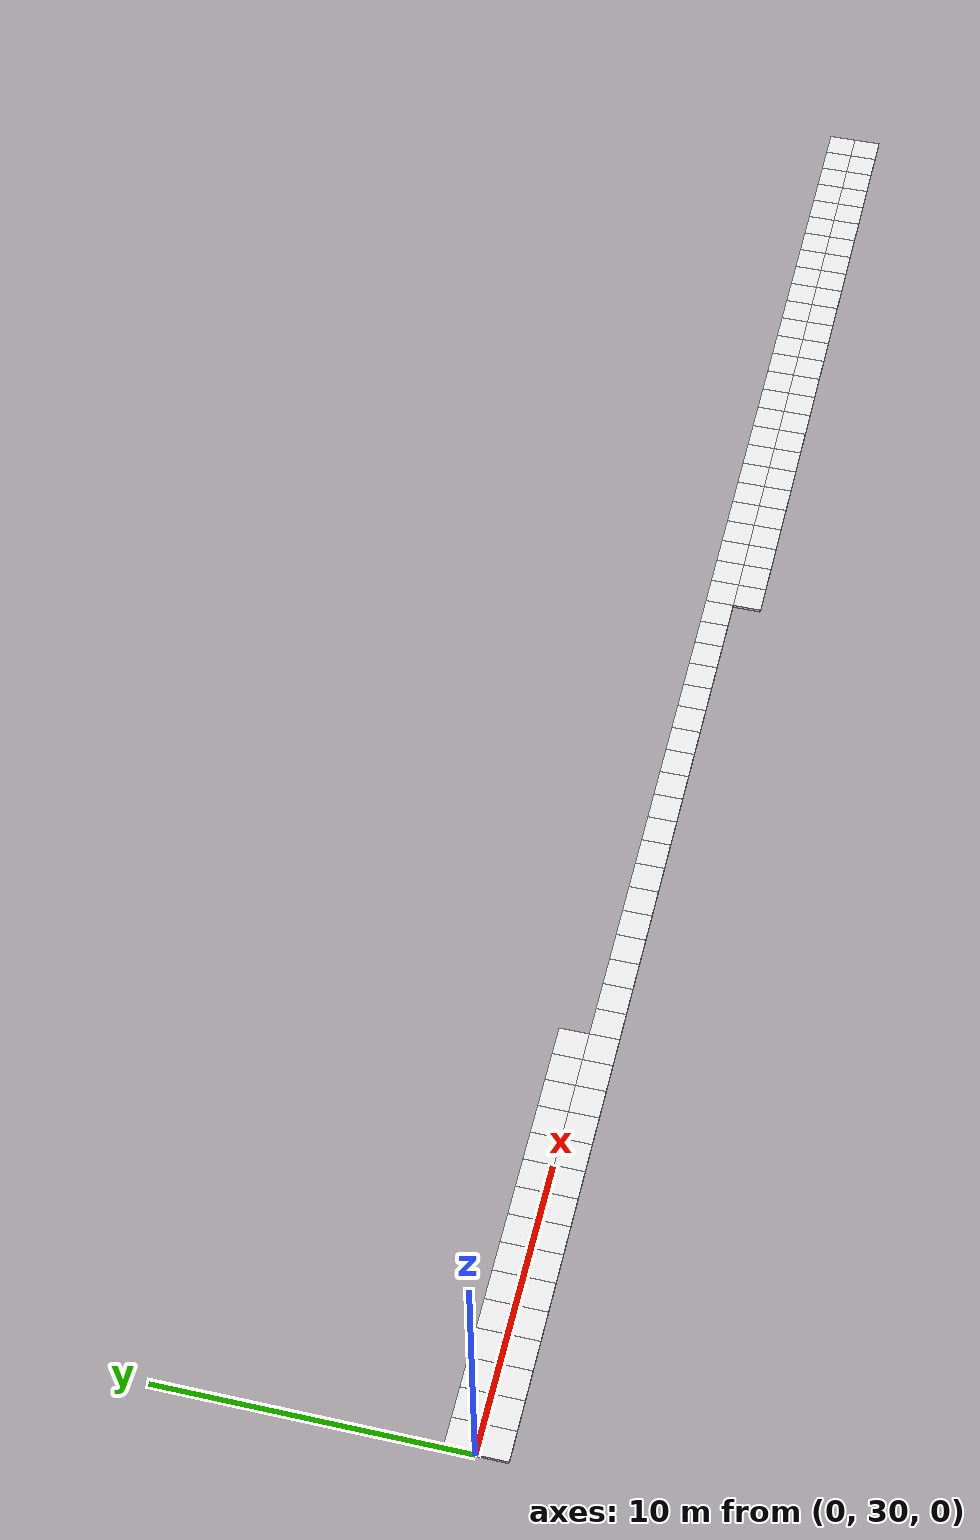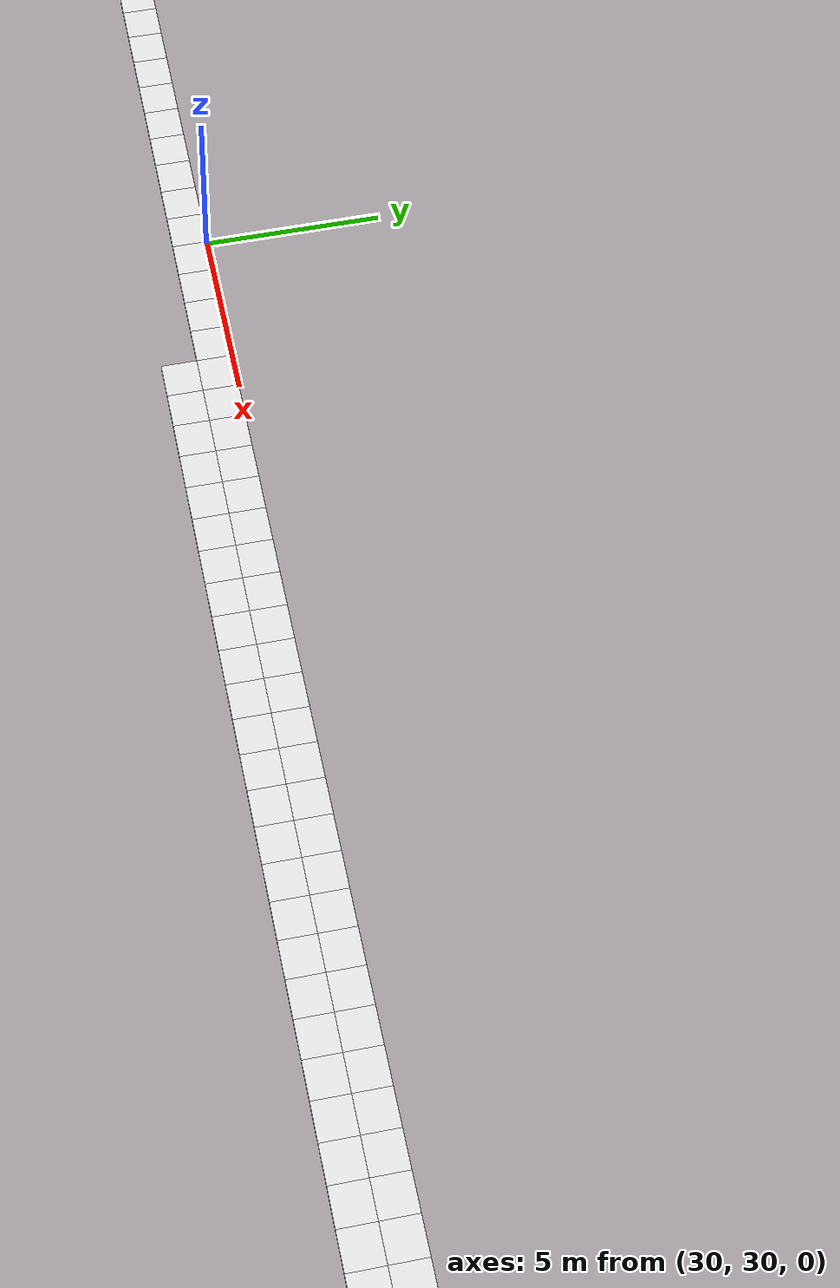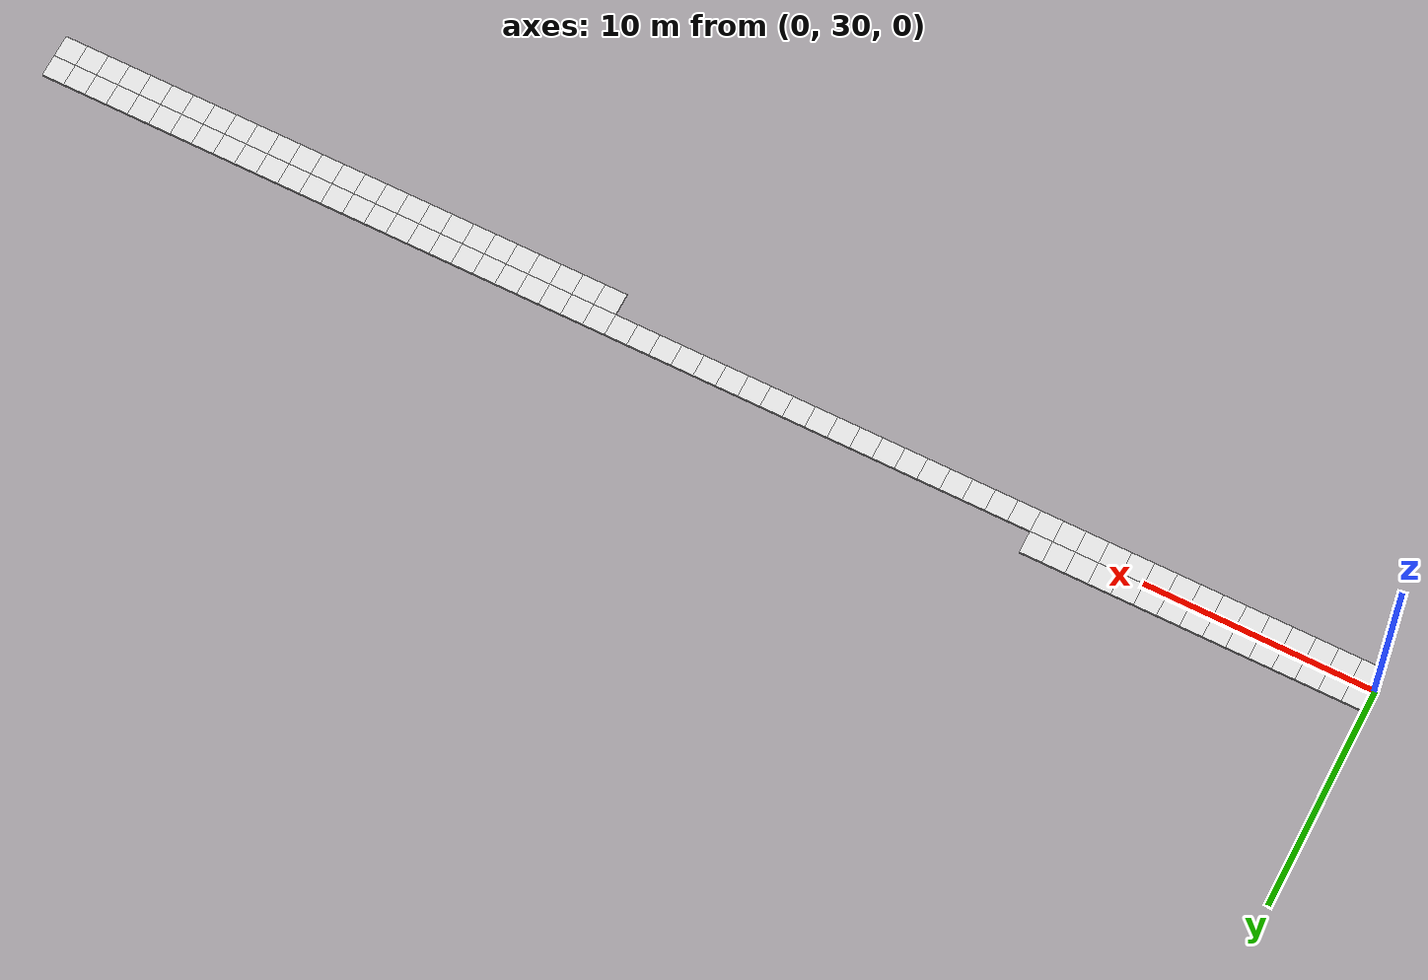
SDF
<sdf version="1.6">
 <world name="grid_world">
  <model name="cell_34_28">
   <static>true</static>
   <link name="link">
    <collision name="collision"><geometry><box><size>1 1 0.1</size></box></geometry></collision>
    <visual name="visual">
     <geometry><box><size>1 1 0.1</size></box></geometry>
     <material>
      <script><uri>file://media/materials/scripts/gazebo.material</uri><name>Gazebo/White</name></script>
     </material>
    </visual>
    <pose>34.5 28.5 0.05 0 0 0</pose>
   </link>
  </model>
  <model name="cell_35_28">
   <static>true</static>
   <link name="link">
    <collision name="collision"><geometry><box><size>1 1 0.1</size></box></geometry></collision>
    <visual name="visual">
     <geometry><box><size>1 1 0.1</size></box></geometry>
     <material>
      <script><uri>file://media/materials/scripts/gazebo.material</uri><name>Gazebo/White</name></script>
     </material>
    </visual>
    <pose>35.5 28.5 0.05 0 0 0</pose>
   </link>
  </model>
  <model name="cell_36_28">
   <static>true</static>
   <link name="link">
    <collision name="collision"><geometry><box><size>1 1 0.1</size></box></geometry></collision>
    <visual name="visual">
     <geometry><box><size>1 1 0.1</size></box></geometry>
     <material>
      <script><uri>file://media/materials/scripts/gazebo.material</uri><name>Gazebo/White</name></script>
     </material>
    </visual>
    <pose>36.5 28.5 0.05 0 0 0</pose>
   </link>
  </model>
  <model name="cell_37_28">
   <static>true</static>
   <link name="link">
    <collision name="collision"><geometry><box><size>1 1 0.1</size></box></geometry></collision>
    <visual name="visual">
     <geometry><box><size>1 1 0.1</size></box></geometry>
     <material>
      <script><uri>file://media/materials/scripts/gazebo.material</uri><name>Gazebo/White</name></script>
     </material>
    </visual>
    <pose>37.5 28.5 0.05 0 0 0</pose>
   </link>
  </model>
  <model name="cell_38_28">
   <static>true</static>
   <link name="link">
    <collision name="collision"><geometry><box><size>1 1 0.1</size></box></geometry></collision>
    <visual name="visual">
     <geometry><box><size>1 1 0.1</size></box></geometry>
     <material>
      <script><uri>file://media/materials/scripts/gazebo.material</uri><name>Gazebo/White</name></script>
     </material>
    </visual>
    <pose>38.5 28.5 0.05 0 0 0</pose>
   </link>
  </model>
  <model name="cell_39_28">
   <static>true</static>
   <link name="link">
    <collision name="collision"><geometry><box><size>1 1 0.1</size></box></geometry></collision>
    <visual name="visual">
     <geometry><box><size>1 1 0.1</size></box></geometry>
     <material>
      <script><uri>file://media/materials/scripts/gazebo.material</uri><name>Gazebo/White</name></script>
     </material>
    </visual>
    <pose>39.5 28.5 0.05 0 0 0</pose>
   </link>
  </model>
  <model name="cell_40_28">
   <static>true</static>
   <link name="link">
    <collision name="collision"><geometry><box><size>1 1 0.1</size></box></geometry></collision>
    <visual name="visual">
     <geometry><box><size>1 1 0.1</size></box></geometry>
     <material>
      <script><uri>file://media/materials/scripts/gazebo.material</uri><name>Gazebo/White</name></script>
     </material>
    </visual>
    <pose>40.5 28.5 0.05 0 0 0</pose>
   </link>
  </model>
  <model name="cell_41_28">
   <static>true</static>
   <link name="link">
    <collision name="collision"><geometry><box><size>1 1 0.1</size></box></geometry></collision>
    <visual name="visual">
     <geometry><box><size>1 1 0.1</size></box></geometry>
     <material>
      <script><uri>file://media/materials/scripts/gazebo.material</uri><name>Gazebo/White</name></script>
     </material>
    </visual>
    <pose>41.5 28.5 0.05 0 0 0</pose>
   </link>
  </model>
  <model name="cell_42_28">
   <static>true</static>
   <link name="link">
    <collision name="collision"><geometry><box><size>1 1 0.1</size></box></geometry></collision>
    <visual name="visual">
     <geometry><box><size>1 1 0.1</size></box></geometry>
     <material>
      <script><uri>file://media/materials/scripts/gazebo.material</uri><name>Gazebo/White</name></script>
     </material>
    </visual>
    <pose>42.5 28.5 0.05 0 0 0</pose>
   </link>
  </model>
  <model name="cell_43_28">
   <static>true</static>
   <link name="link">
    <collision name="collision"><geometry><box><size>1 1 0.1</size></box></geometry></collision>
    <visual name="visual">
     <geometry><box><size>1 1 0.1</size></box></geometry>
     <material>
      <script><uri>file://media/materials/scripts/gazebo.material</uri><name>Gazebo/White</name></script>
     </material>
    </visual>
    <pose>43.5 28.5 0.05 0 0 0</pose>
   </link>
  </model>
  <model name="cell_44_28">
   <static>true</static>
   <link name="link">
    <collision name="collision"><geometry><box><size>1 1 0.1</size></box></geometry></collision>
    <visual name="visual">
     <geometry><box><size>1 1 0.1</size></box></geometry>
     <material>
      <script><uri>file://media/materials/scripts/gazebo.material</uri><name>Gazebo/White</name></script>
     </material>
    </visual>
    <pose>44.5 28.5 0.05 0 0 0</pose>
   </link>
  </model>
  <model name="cell_45_28">
   <static>true</static>
   <link name="link">
    <collision name="collision"><geometry><box><size>1 1 0.1</size></box></geometry></collision>
    <visual name="visual">
     <geometry><box><size>1 1 0.1</size></box></geometry>
     <material>
      <script><uri>file://media/materials/scripts/gazebo.material</uri><name>Gazebo/White</name></script>
     </material>
    </visual>
    <pose>45.5 28.5 0.05 0 0 0</pose>
   </link>
  </model>
  <model name="cell_46_28">
   <static>true</static>
   <link name="link">
    <collision name="collision"><geometry><box><size>1 1 0.1</size></box></geometry></collision>
    <visual name="visual">
     <geometry><box><size>1 1 0.1</size></box></geometry>
     <material>
      <script><uri>file://media/materials/scripts/gazebo.material</uri><name>Gazebo/White</name></script>
     </material>
    </visual>
    <pose>46.5 28.5 0.05 0 0 0</pose>
   </link>
  </model>
  <model name="cell_47_28">
   <static>true</static>
   <link name="link">
    <collision name="collision"><geometry><box><size>1 1 0.1</size></box></geometry></collision>
    <visual name="visual">
     <geometry><box><size>1 1 0.1</size></box></geometry>
     <material>
      <script><uri>file://media/materials/scripts/gazebo.material</uri><name>Gazebo/White</name></script>
     </material>
    </visual>
    <pose>47.5 28.5 0.05 0 0 0</pose>
   </link>
  </model>
  <model name="cell_48_28">
   <static>true</static>
   <link name="link">
    <collision name="collision"><geometry><box><size>1 1 0.1</size></box></geometry></collision>
    <visual name="visual">
     <geometry><box><size>1 1 0.1</size></box></geometry>
     <material>
      <script><uri>file://media/materials/scripts/gazebo.material</uri><name>Gazebo/White</name></script>
     </material>
    </visual>
    <pose>48.5 28.5 0.05 0 0 0</pose>
   </link>
  </model>
  <model name="cell_49_28">
   <static>true</static>
   <link name="link">
    <collision name="collision"><geometry><box><size>1 1 0.1</size></box></geometry></collision>
    <visual name="visual">
     <geometry><box><size>1 1 0.1</size></box></geometry>
     <material>
      <script><uri>file://media/materials/scripts/gazebo.material</uri><name>Gazebo/White</name></script>
     </material>
    </visual>
    <pose>49.5 28.5 0.05 0 0 0</pose>
   </link>
  </model>
  <model name="cell_50_28">
   <static>true</static>
   <link name="link">
    <collision name="collision"><geometry><box><size>1 1 0.1</size></box></geometry></collision>
    <visual name="visual">
     <geometry><box><size>1 1 0.1</size></box></geometry>
     <material>
      <script><uri>file://media/materials/scripts/gazebo.material</uri><name>Gazebo/White</name></script>
     </material>
    </visual>
    <pose>50.5 28.5 0.05 0 0 0</pose>
   </link>
  </model>
  <model name="cell_51_28">
   <static>true</static>
   <link name="link">
    <collision name="collision"><geometry><box><size>1 1 0.1</size></box></geometry></collision>
    <visual name="visual">
     <geometry><box><size>1 1 0.1</size></box></geometry>
     <material>
      <script><uri>file://media/materials/scripts/gazebo.material</uri><name>Gazebo/White</name></script>
     </material>
    </visual>
    <pose>51.5 28.5 0.05 0 0 0</pose>
   </link>
  </model>
  <model name="cell_52_28">
   <static>true</static>
   <link name="link">
    <collision name="collision"><geometry><box><size>1 1 0.1</size></box></geometry></collision>
    <visual name="visual">
     <geometry><box><size>1 1 0.1</size></box></geometry>
     <material>
      <script><uri>file://media/materials/scripts/gazebo.material</uri><name>Gazebo/White</name></script>
     </material>
    </visual>
    <pose>52.5 28.5 0.05 0 0 0</pose>
   </link>
  </model>
  <model name="cell_53_28">
   <static>true</static>
   <link name="link">
    <collision name="collision"><geometry><box><size>1 1 0.1</size></box></geometry></collision>
    <visual name="visual">
     <geometry><box><size>1 1 0.1</size></box></geometry>
     <material>
      <script><uri>file://media/materials/scripts/gazebo.material</uri><name>Gazebo/White</name></script>
     </material>
    </visual>
    <pose>53.5 28.5 0.05 0 0 0</pose>
   </link>
  </model>
  <model name="cell_54_28">
   <static>true</static>
   <link name="link">
    <collision name="collision"><geometry><box><size>1 1 0.1</size></box></geometry></collision>
    <visual name="visual">
     <geometry><box><size>1 1 0.1</size></box></geometry>
     <material>
      <script><uri>file://media/materials/scripts/gazebo.material</uri><name>Gazebo/White</name></script>
     </material>
    </visual>
    <pose>54.5 28.5 0.05 0 0 0</pose>
   </link>
  </model>
  <model name="cell_55_28">
   <static>true</static>
   <link name="link">
    <collision name="collision"><geometry><box><size>1 1 0.1</size></box></geometry></collision>
    <visual name="visual">
     <geometry><box><size>1 1 0.1</size></box></geometry>
     <material>
      <script><uri>file://media/materials/scripts/gazebo.material</uri><name>Gazebo/White</name></script>
     </material>
    </visual>
    <pose>55.5 28.5 0.05 0 0 0</pose>
   </link>
  </model>
  <model name="cell_56_28">
   <static>true</static>
   <link name="link">
    <collision name="collision"><geometry><box><size>1 1 0.1</size></box></geometry></collision>
    <visual name="visual">
     <geometry><box><size>1 1 0.1</size></box></geometry>
     <material>
      <script><uri>file://media/materials/scripts/gazebo.material</uri><name>Gazebo/White</name></script>
     </material>
    </visual>
    <pose>56.5 28.5 0.05 0 0 0</pose>
   </link>
  </model>
  <model name="cell_57_28">
   <static>true</static>
   <link name="link">
    <collision name="collision"><geometry><box><size>1 1 0.1</size></box></geometry></collision>
    <visual name="visual">
     <geometry><box><size>1 1 0.1</size></box></geometry>
     <material>
      <script><uri>file://media/materials/scripts/gazebo.material</uri><name>Gazebo/White</name></script>
     </material>
    </visual>
    <pose>57.5 28.5 0.05 0 0 0</pose>
   </link>
  </model>
  <model name="cell_58_28">
   <static>true</static>
   <link name="link">
    <collision name="collision"><geometry><box><size>1 1 0.1</size></box></geometry></collision>
    <visual name="visual">
     <geometry><box><size>1 1 0.1</size></box></geometry>
     <material>
      <script><uri>file://media/materials/scripts/gazebo.material</uri><name>Gazebo/White</name></script>
     </material>
    </visual>
    <pose>58.5 28.5 0.05 0 0 0</pose>
   </link>
  </model>
  <model name="cell_59_28">
   <static>true</static>
   <link name="link">
    <collision name="collision"><geometry><box><size>1 1 0.1</size></box></geometry></collision>
    <visual name="visual">
     <geometry><box><size>1 1 0.1</size></box></geometry>
     <material>
      <script><uri>file://media/materials/scripts/gazebo.material</uri><name>Gazebo/White</name></script>
     </material>
    </visual>
    <pose>59.5 28.5 0.05 0 0 0</pose>
   </link>
  </model>
  <model name="cell_0_29">
   <static>true</static>
   <link name="link">
    <collision name="collision"><geometry><box><size>1 1 0.1</size></box></geometry></collision>
    <visual name="visual">
     <geometry><box><size>1 1 0.1</size></box></geometry>
     <material>
      <script><uri>file://media/materials/scripts/gazebo.material</uri><name>Gazebo/White</name></script>
     </material>
    </visual>
    <pose>0.5 29.5 0.05 0 0 0</pose>
   </link>
  </model>
  <model name="cell_1_29">
   <static>true</static>
   <link name="link">
    <collision name="collision"><geometry><box><size>1 1 0.1</size></box></geometry></collision>
    <visual name="visual">
     <geometry><box><size>1 1 0.1</size></box></geometry>
     <material>
      <script><uri>file://media/materials/scripts/gazebo.material</uri><name>Gazebo/White</name></script>
     </material>
    </visual>
    <pose>1.5 29.5 0.05 0 0 0</pose>
   </link>
  </model>
  <model name="cell_2_29">
   <static>true</static>
   <link name="link">
    <collision name="collision"><geometry><box><size>1 1 0.1</size></box></geometry></collision>
    <visual name="visual">
     <geometry><box><size>1 1 0.1</size></box></geometry>
     <material>
      <script><uri>file://media/materials/scripts/gazebo.material</uri><name>Gazebo/White</name></script>
     </material>
    </visual>
    <pose>2.5 29.5 0.05 0 0 0</pose>
   </link>
  </model>
  <model name="cell_3_29">
   <static>true</static>
   <link name="link">
    <collision name="collision"><geometry><box><size>1 1 0.1</size></box></geometry></collision>
    <visual name="visual">
     <geometry><box><size>1 1 0.1</size></box></geometry>
     <material>
      <script><uri>file://media/materials/scripts/gazebo.material</uri><name>Gazebo/White</name></script>
     </material>
    </visual>
    <pose>3.5 29.5 0.05 0 0 0</pose>
   </link>
  </model>
  <model name="cell_4_29">
   <static>true</static>
   <link name="link">
    <collision name="collision"><geometry><box><size>1 1 0.1</size></box></geometry></collision>
    <visual name="visual">
     <geometry><box><size>1 1 0.1</size></box></geometry>
     <material>
      <script><uri>file://media/materials/scripts/gazebo.material</uri><name>Gazebo/White</name></script>
     </material>
    </visual>
    <pose>4.5 29.5 0.05 0 0 0</pose>
   </link>
  </model>
  <model name="cell_5_29">
   <static>true</static>
   <link name="link">
    <collision name="collision"><geometry><box><size>1 1 0.1</size></box></geometry></collision>
    <visual name="visual">
     <geometry><box><size>1 1 0.1</size></box></geometry>
     <material>
      <script><uri>file://media/materials/scripts/gazebo.material</uri><name>Gazebo/White</name></script>
     </material>
    </visual>
    <pose>5.5 29.5 0.05 0 0 0</pose>
   </link>
  </model>
  <model name="cell_6_29">
   <static>true</static>
   <link name="link">
    <collision name="collision"><geometry><box><size>1 1 0.1</size></box></geometry></collision>
    <visual name="visual">
     <geometry><box><size>1 1 0.1</size></box></geometry>
     <material>
      <script><uri>file://media/materials/scripts/gazebo.material</uri><name>Gazebo/White</name></script>
     </material>
    </visual>
    <pose>6.5 29.5 0.05 0 0 0</pose>
   </link>
  </model>
  <model name="cell_7_29">
   <static>true</static>
   <link name="link">
    <collision name="collision"><geometry><box><size>1 1 0.1</size></box></geometry></collision>
    <visual name="visual">
     <geometry><box><size>1 1 0.1</size></box></geometry>
     <material>
      <script><uri>file://media/materials/scripts/gazebo.material</uri><name>Gazebo/White</name></script>
     </material>
    </visual>
    <pose>7.5 29.5 0.05 0 0 0</pose>
   </link>
  </model>
  <model name="cell_8_29">
   <static>true</static>
   <link name="link">
    <collision name="collision"><geometry><box><size>1 1 0.1</size></box></geometry></collision>
    <visual name="visual">
     <geometry><box><size>1 1 0.1</size></box></geometry>
     <material>
      <script><uri>file://media/materials/scripts/gazebo.material</uri><name>Gazebo/White</name></script>
     </material>
    </visual>
    <pose>8.5 29.5 0.05 0 0 0</pose>
   </link>
  </model>
  <model name="cell_9_29">
   <static>true</static>
   <link name="link">
    <collision name="collision"><geometry><box><size>1 1 0.1</size></box></geometry></collision>
    <visual name="visual">
     <geometry><box><size>1 1 0.1</size></box></geometry>
     <material>
      <script><uri>file://media/materials/scripts/gazebo.material</uri><name>Gazebo/White</name></script>
     </material>
    </visual>
    <pose>9.5 29.5 0.05 0 0 0</pose>
   </link>
  </model>
  <model name="cell_10_29">
   <static>true</static>
   <link name="link">
    <collision name="collision"><geometry><box><size>1 1 0.1</size></box></geometry></collision>
    <visual name="visual">
     <geometry><box><size>1 1 0.1</size></box></geometry>
     <material>
      <script><uri>file://media/materials/scripts/gazebo.material</uri><name>Gazebo/White</name></script>
     </material>
    </visual>
    <pose>10.5 29.5 0.05 0 0 0</pose>
   </link>
  </model>
  <model name="cell_11_29">
   <static>true</static>
   <link name="link">
    <collision name="collision"><geometry><box><size>1 1 0.1</size></box></geometry></collision>
    <visual name="visual">
     <geometry><box><size>1 1 0.1</size></box></geometry>
     <material>
      <script><uri>file://media/materials/scripts/gazebo.material</uri><name>Gazebo/White</name></script>
     </material>
    </visual>
    <pose>11.5 29.5 0.05 0 0 0</pose>
   </link>
  </model>
  <model name="cell_12_29">
   <static>true</static>
   <link name="link">
    <collision name="collision"><geometry><box><size>1 1 0.1</size></box></geometry></collision>
    <visual name="visual">
     <geometry><box><size>1 1 0.1</size></box></geometry>
     <material>
      <script><uri>file://media/materials/scripts/gazebo.material</uri><name>Gazebo/White</name></script>
     </material>
    </visual>
    <pose>12.5 29.5 0.05 0 0 0</pose>
   </link>
  </model>
  <model name="cell_13_29">
   <static>true</static>
   <link name="link">
    <collision name="collision"><geometry><box><size>1 1 0.1</size></box></geometry></collision>
    <visual name="visual">
     <geometry><box><size>1 1 0.1</size></box></geometry>
     <material>
      <script><uri>file://media/materials/scripts/gazebo.material</uri><name>Gazebo/White</name></script>
     </material>
    </visual>
    <pose>13.5 29.5 0.05 0 0 0</pose>
   </link>
  </model>
  <model name="cell_14_29">
   <static>true</static>
   <link name="link">
    <collision name="collision"><geometry><box><size>1 1 0.1</size></box></geometry></collision>
    <visual name="visual">
     <geometry><box><size>1 1 0.1</size></box></geometry>
     <material>
      <script><uri>file://media/materials/scripts/gazebo.material</uri><name>Gazebo/White</name></script>
     </material>
    </visual>
    <pose>14.5 29.5 0.05 0 0 0</pose>
   </link>
  </model>
  <model name="cell_15_29">
   <static>true</static>
   <link name="link">
    <collision name="collision"><geometry><box><size>1 1 0.1</size></box></geometry></collision>
    <visual name="visual">
     <geometry><box><size>1 1 0.1</size></box></geometry>
     <material>
      <script><uri>file://media/materials/scripts/gazebo.material</uri><name>Gazebo/White</name></script>
     </material>
    </visual>
    <pose>15.5 29.5 0.05 0 0 0</pose>
   </link>
  </model>
  <model name="cell_16_29">
   <static>true</static>
   <link name="link">
    <collision name="collision"><geometry><box><size>1 1 0.1</size></box></geometry></collision>
    <visual name="visual">
     <geometry><box><size>1 1 0.1</size></box></geometry>
     <material>
      <script><uri>file://media/materials/scripts/gazebo.material</uri><name>Gazebo/White</name></script>
     </material>
    </visual>
    <pose>16.5 29.5 0.05 0 0 0</pose>
   </link>
  </model>
  <model name="cell_17_29">
   <static>true</static>
   <link name="link">
    <collision name="collision"><geometry><box><size>1 1 0.1</size></box></geometry></collision>
    <visual name="visual">
     <geometry><box><size>1 1 0.1</size></box></geometry>
     <material>
      <script><uri>file://media/materials/scripts/gazebo.material</uri><name>Gazebo/White</name></script>
     </material>
    </visual>
    <pose>17.5 29.5 0.05 0 0 0</pose>
   </link>
  </model>
  <model name="cell_18_29">
   <static>true</static>
   <link name="link">
    <collision name="collision"><geometry><box><size>1 1 0.1</size></box></geometry></collision>
    <visual name="visual">
     <geometry><box><size>1 1 0.1</size></box></geometry>
     <material>
      <script><uri>file://media/materials/scripts/gazebo.material</uri><name>Gazebo/White</name></script>
     </material>
    </visual>
    <pose>18.5 29.5 0.05 0 0 0</pose>
   </link>
  </model>
  <model name="cell_19_29">
   <static>true</static>
   <link name="link">
    <collision name="collision"><geometry><box><size>1 1 0.1</size></box></geometry></collision>
    <visual name="visual">
     <geometry><box><size>1 1 0.1</size></box></geometry>
     <material>
      <script><uri>file://media/materials/scripts/gazebo.material</uri><name>Gazebo/White</name></script>
     </material>
    </visual>
    <pose>19.5 29.5 0.05 0 0 0</pose>
   </link>
  </model>
  <model name="cell_20_29">
   <static>true</static>
   <link name="link">
    <collision name="collision"><geometry><box><size>1 1 0.1</size></box></geometry></collision>
    <visual name="visual">
     <geometry><box><size>1 1 0.1</size></box></geometry>
     <material>
      <script><uri>file://media/materials/scripts/gazebo.material</uri><name>Gazebo/White</name></script>
     </material>
    </visual>
    <pose>20.5 29.5 0.05 0 0 0</pose>
   </link>
  </model>
  <model name="cell_21_29">
   <static>true</static>
   <link name="link">
    <collision name="collision"><geometry><box><size>1 1 0.1</size></box></geometry></collision>
    <visual name="visual">
     <geometry><box><size>1 1 0.1</size></box></geometry>
     <material>
      <script><uri>file://media/materials/scripts/gazebo.material</uri><name>Gazebo/White</name></script>
     </material>
    </visual>
    <pose>21.5 29.5 0.05 0 0 0</pose>
   </link>
  </model>
  <model name="cell_22_29">
   <static>true</static>
   <link name="link">
    <collision name="collision"><geometry><box><size>1 1 0.1</size></box></geometry></collision>
    <visual name="visual">
     <geometry><box><size>1 1 0.1</size></box></geometry>
     <material>
      <script><uri>file://media/materials/scripts/gazebo.material</uri><name>Gazebo/White</name></script>
     </material>
    </visual>
    <pose>22.5 29.5 0.05 0 0 0</pose>
   </link>
  </model>
  <model name="cell_23_29">
   <static>true</static>
   <link name="link">
    <collision name="collision"><geometry><box><size>1 1 0.1</size></box></geometry></collision>
    <visual name="visual">
     <geometry><box><size>1 1 0.1</size></box></geometry>
     <material>
      <script><uri>file://media/materials/scripts/gazebo.material</uri><name>Gazebo/White</name></script>
     </material>
    </visual>
    <pose>23.5 29.5 0.05 0 0 0</pose>
   </link>
  </model>
  <model name="cell_24_29">
   <static>true</static>
   <link name="link">
    <collision name="collision"><geometry><box><size>1 1 0.1</size></box></geometry></collision>
    <visual name="visual">
     <geometry><box><size>1 1 0.1</size></box></geometry>
     <material>
      <script><uri>file://media/materials/scripts/gazebo.material</uri><name>Gazebo/White</name></script>
     </material>
    </visual>
    <pose>24.5 29.5 0.05 0 0 0</pose>
   </link>
  </model>
  <model name="cell_25_29">
   <static>true</static>
   <link name="link">
    <collision name="collision"><geometry><box><size>1 1 0.1</size></box></geometry></collision>
    <visual name="visual">
     <geometry><box><size>1 1 0.1</size></box></geometry>
     <material>
      <script><uri>file://media/materials/scripts/gazebo.material</uri><name>Gazebo/White</name></script>
     </material>
    </visual>
    <pose>25.5 29.5 0.05 0 0 0</pose>
   </link>
  </model>
  <model name="cell_26_29">
   <static>true</static>
   <link name="link">
    <collision name="collision"><geometry><box><size>1 1 0.1</size></box></geometry></collision>
    <visual name="visual">
     <geometry><box><size>1 1 0.1</size></box></geometry>
     <material>
      <script><uri>file://media/materials/scripts/gazebo.material</uri><name>Gazebo/White</name></script>
     </material>
    </visual>
    <pose>26.5 29.5 0.05 0 0 0</pose>
   </link>
  </model>
  <model name="cell_27_29">
   <static>true</static>
   <link name="link">
    <collision name="collision"><geometry><box><size>1 1 0.1</size></box></geometry></collision>
    <visual name="visual">
     <geometry><box><size>1 1 0.1</size></box></geometry>
     <material>
      <script><uri>file://media/materials/scripts/gazebo.material</uri><name>Gazebo/White</name></script>
     </material>
    </visual>
    <pose>27.5 29.5 0.05 0 0 0</pose>
   </link>
  </model>
  <model name="cell_28_29">
   <static>true</static>
   <link name="link">
    <collision name="collision"><geometry><box><size>1 1 0.1</size></box></geometry></collision>
    <visual name="visual">
     <geometry><box><size>1 1 0.1</size></box></geometry>
     <material>
      <script><uri>file://media/materials/scripts/gazebo.material</uri><name>Gazebo/White</name></script>
     </material>
    </visual>
    <pose>28.5 29.5 0.05 0 0 0</pose>
   </link>
  </model>
  <model name="cell_29_29">
   <static>true</static>
   <link name="link">
    <collision name="collision"><geometry><box><size>1 1 0.1</size></box></geometry></collision>
    <visual name="visual">
     <geometry><box><size>1 1 0.1</size></box></geometry>
     <material>
      <script><uri>file://media/materials/scripts/gazebo.material</uri><name>Gazebo/White</name></script>
     </material>
    </visual>
    <pose>29.5 29.5 0.05 0 0 0</pose>
   </link>
  </model>
  <model name="cell_30_29">
   <static>true</static>
   <link name="link">
    <collision name="collision"><geometry><box><size>1 1 0.1</size></box></geometry></collision>
    <visual name="visual">
     <geometry><box><size>1 1 0.1</size></box></geometry>
     <material>
      <script><uri>file://media/materials/scripts/gazebo.material</uri><name>Gazebo/White</name></script>
     </material>
    </visual>
    <pose>30.5 29.5 0.05 0 0 0</pose>
   </link>
  </model>
  <model name="cell_31_29">
   <static>true</static>
   <link name="link">
    <collision name="collision"><geometry><box><size>1 1 0.1</size></box></geometry></collision>
    <visual name="visual">
     <geometry><box><size>1 1 0.1</size></box></geometry>
     <material>
      <script><uri>file://media/materials/scripts/gazebo.material</uri><name>Gazebo/White</name></script>
     </material>
    </visual>
    <pose>31.5 29.5 0.05 0 0 0</pose>
   </link>
  </model>
  <model name="cell_32_29">
   <static>true</static>
   <link name="link">
    <collision name="collision"><geometry><box><size>1 1 0.1</size></box></geometry></collision>
    <visual name="visual">
     <geometry><box><size>1 1 0.1</size></box></geometry>
     <material>
      <script><uri>file://media/materials/scripts/gazebo.material</uri><name>Gazebo/White</name></script>
     </material>
    </visual>
    <pose>32.5 29.5 0.05 0 0 0</pose>
   </link>
  </model>
  <model name="cell_33_29">
   <static>true</static>
   <link name="link">
    <collision name="collision"><geometry><box><size>1 1 0.1</size></box></geometry></collision>
    <visual name="visual">
     <geometry><box><size>1 1 0.1</size></box></geometry>
     <material>
      <script><uri>file://media/materials/scripts/gazebo.material</uri><name>Gazebo/White</name></script>
     </material>
    </visual>
    <pose>33.5 29.5 0.05 0 0 0</pose>
   </link>
  </model>
  <model name="cell_34_29">
   <static>true</static>
   <link name="link">
    <collision name="collision"><geometry><box><size>1 1 0.1</size></box></geometry></collision>
    <visual name="visual">
     <geometry><box><size>1 1 0.1</size></box></geometry>
     <material>
      <script><uri>file://media/materials/scripts/gazebo.material</uri><name>Gazebo/White</name></script>
     </material>
    </visual>
    <pose>34.5 29.5 0.05 0 0 0</pose>
   </link>
  </model>
  <model name="cell_35_29">
   <static>true</static>
   <link name="link">
    <collision name="collision"><geometry><box><size>1 1 0.1</size></box></geometry></collision>
    <visual name="visual">
     <geometry><box><size>1 1 0.1</size></box></geometry>
     <material>
      <script><uri>file://media/materials/scripts/gazebo.material</uri><name>Gazebo/White</name></script>
     </material>
    </visual>
    <pose>35.5 29.5 0.05 0 0 0</pose>
   </link>
  </model>
  <model name="cell_36_29">
   <static>true</static>
   <link name="link">
    <collision name="collision"><geometry><box><size>1 1 0.1</size></box></geometry></collision>
    <visual name="visual">
     <geometry><box><size>1 1 0.1</size></box></geometry>
     <material>
      <script><uri>file://media/materials/scripts/gazebo.material</uri><name>Gazebo/White</name></script>
     </material>
    </visual>
    <pose>36.5 29.5 0.05 0 0 0</pose>
   </link>
  </model>
  <model name="cell_37_29">
   <static>true</static>
   <link name="link">
    <collision name="collision"><geometry><box><size>1 1 0.1</size></box></geometry></collision>
    <visual name="visual">
     <geometry><box><size>1 1 0.1</size></box></geometry>
     <material>
      <script><uri>file://media/materials/scripts/gazebo.material</uri><name>Gazebo/White</name></script>
     </material>
    </visual>
    <pose>37.5 29.5 0.05 0 0 0</pose>
   </link>
  </model>
  <model name="cell_38_29">
   <static>true</static>
   <link name="link">
    <collision name="collision"><geometry><box><size>1 1 0.1</size></box></geometry></collision>
    <visual name="visual">
     <geometry><box><size>1 1 0.1</size></box></geometry>
     <material>
      <script><uri>file://media/materials/scripts/gazebo.material</uri><name>Gazebo/White</name></script>
     </material>
    </visual>
    <pose>38.5 29.5 0.05 0 0 0</pose>
   </link>
  </model>
  <model name="cell_39_29">
   <static>true</static>
   <link name="link">
    <collision name="collision"><geometry><box><size>1 1 0.1</size></box></geometry></collision>
    <visual name="visual">
     <geometry><box><size>1 1 0.1</size></box></geometry>
     <material>
      <script><uri>file://media/materials/scripts/gazebo.material</uri><name>Gazebo/White</name></script>
     </material>
    </visual>
    <pose>39.5 29.5 0.05 0 0 0</pose>
   </link>
  </model>
  <model name="cell_40_29">
   <static>true</static>
   <link name="link">
    <collision name="collision"><geometry><box><size>1 1 0.1</size></box></geometry></collision>
    <visual name="visual">
     <geometry><box><size>1 1 0.1</size></box></geometry>
     <material>
      <script><uri>file://media/materials/scripts/gazebo.material</uri><name>Gazebo/White</name></script>
     </material>
    </visual>
    <pose>40.5 29.5 0.05 0 0 0</pose>
   </link>
  </model>
  <model name="cell_41_29">
   <static>true</static>
   <link name="link">
    <collision name="collision"><geometry><box><size>1 1 0.1</size></box></geometry></collision>
    <visual name="visual">
     <geometry><box><size>1 1 0.1</size></box></geometry>
     <material>
      <script><uri>file://media/materials/scripts/gazebo.material</uri><name>Gazebo/White</name></script>
     </material>
    </visual>
    <pose>41.5 29.5 0.05 0 0 0</pose>
   </link>
  </model>
  <model name="cell_42_29">
   <static>true</static>
   <link name="link">
    <collision name="collision"><geometry><box><size>1 1 0.1</size></box></geometry></collision>
    <visual name="visual">
     <geometry><box><size>1 1 0.1</size></box></geometry>
     <material>
      <script><uri>file://media/materials/scripts/gazebo.material</uri><name>Gazebo/White</name></script>
     </material>
    </visual>
    <pose>42.5 29.5 0.05 0 0 0</pose>
   </link>
  </model>
  <model name="cell_43_29">
   <static>true</static>
   <link name="link">
    <collision name="collision"><geometry><box><size>1 1 0.1</size></box></geometry></collision>
    <visual name="visual">
     <geometry><box><size>1 1 0.1</size></box></geometry>
     <material>
      <script><uri>file://media/materials/scripts/gazebo.material</uri><name>Gazebo/White</name></script>
     </material>
    </visual>
    <pose>43.5 29.5 0.05 0 0 0</pose>
   </link>
  </model>
  <model name="cell_44_29">
   <static>true</static>
   <link name="link">
    <collision name="collision"><geometry><box><size>1 1 0.1</size></box></geometry></collision>
    <visual name="visual">
     <geometry><box><size>1 1 0.1</size></box></geometry>
     <material>
      <script><uri>file://media/materials/scripts/gazebo.material</uri><name>Gazebo/White</name></script>
     </material>
    </visual>
    <pose>44.5 29.5 0.05 0 0 0</pose>
   </link>
  </model>
  <model name="cell_45_29">
   <static>true</static>
   <link name="link">
    <collision name="collision"><geometry><box><size>1 1 0.1</size></box></geometry></collision>
    <visual name="visual">
     <geometry><box><size>1 1 0.1</size></box></geometry>
     <material>
      <script><uri>file://media/materials/scripts/gazebo.material</uri><name>Gazebo/White</name></script>
     </material>
    </visual>
    <pose>45.5 29.5 0.05 0 0 0</pose>
   </link>
  </model>
  <model name="cell_46_29">
   <static>true</static>
   <link name="link">
    <collision name="collision"><geometry><box><size>1 1 0.1</size></box></geometry></collision>
    <visual name="visual">
     <geometry><box><size>1 1 0.1</size></box></geometry>
     <material>
      <script><uri>file://media/materials/scripts/gazebo.material</uri><name>Gazebo/White</name></script>
     </material>
    </visual>
    <pose>46.5 29.5 0.05 0 0 0</pose>
   </link>
  </model>
  <model name="cell_47_29">
   <static>true</static>
   <link name="link">
    <collision name="collision"><geometry><box><size>1 1 0.1</size></box></geometry></collision>
    <visual name="visual">
     <geometry><box><size>1 1 0.1</size></box></geometry>
     <material>
      <script><uri>file://media/materials/scripts/gazebo.material</uri><name>Gazebo/White</name></script>
     </material>
    </visual>
    <pose>47.5 29.5 0.05 0 0 0</pose>
   </link>
  </model>
  <model name="cell_48_29">
   <static>true</static>
   <link name="link">
    <collision name="collision"><geometry><box><size>1 1 0.1</size></box></geometry></collision>
    <visual name="visual">
     <geometry><box><size>1 1 0.1</size></box></geometry>
     <material>
      <script><uri>file://media/materials/scripts/gazebo.material</uri><name>Gazebo/White</name></script>
     </material>
    </visual>
    <pose>48.5 29.5 0.05 0 0 0</pose>
   </link>
  </model>
  <model name="cell_49_29">
   <static>true</static>
   <link name="link">
    <collision name="collision"><geometry><box><size>1 1 0.1</size></box></geometry></collision>
    <visual name="visual">
     <geometry><box><size>1 1 0.1</size></box></geometry>
     <material>
      <script><uri>file://media/materials/scripts/gazebo.material</uri><name>Gazebo/White</name></script>
     </material>
    </visual>
    <pose>49.5 29.5 0.05 0 0 0</pose>
   </link>
  </model>
  <model name="cell_50_29">
   <static>true</static>
   <link name="link">
    <collision name="collision"><geometry><box><size>1 1 0.1</size></box></geometry></collision>
    <visual name="visual">
     <geometry><box><size>1 1 0.1</size></box></geometry>
     <material>
      <script><uri>file://media/materials/scripts/gazebo.material</uri><name>Gazebo/White</name></script>
     </material>
    </visual>
    <pose>50.5 29.5 0.05 0 0 0</pose>
   </link>
  </model>
  <model name="cell_51_29">
   <static>true</static>
   <link name="link">
    <collision name="collision"><geometry><box><size>1 1 0.1</size></box></geometry></collision>
    <visual name="visual">
     <geometry><box><size>1 1 0.1</size></box></geometry>
     <material>
      <script><uri>file://media/materials/scripts/gazebo.material</uri><name>Gazebo/White</name></script>
     </material>
    </visual>
    <pose>51.5 29.5 0.05 0 0 0</pose>
   </link>
  </model>
  <model name="cell_52_29">
   <static>true</static>
   <link name="link">
    <collision name="collision"><geometry><box><size>1 1 0.1</size></box></geometry></collision>
    <visual name="visual">
     <geometry><box><size>1 1 0.1</size></box></geometry>
     <material>
      <script><uri>file://media/materials/scripts/gazebo.material</uri><name>Gazebo/White</name></script>
     </material>
    </visual>
    <pose>52.5 29.5 0.05 0 0 0</pose>
   </link>
  </model>
  <model name="cell_53_29">
   <static>true</static>
   <link name="link">
    <collision name="collision"><geometry><box><size>1 1 0.1</size></box></geometry></collision>
    <visual name="visual">
     <geometry><box><size>1 1 0.1</size></box></geometry>
     <material>
      <script><uri>file://media/materials/scripts/gazebo.material</uri><name>Gazebo/White</name></script>
     </material>
    </visual>
    <pose>53.5 29.5 0.05 0 0 0</pose>
   </link>
  </model>
  <model name="cell_54_29">
   <static>true</static>
   <link name="link">
    <collision name="collision"><geometry><box><size>1 1 0.1</size></box></geometry></collision>
    <visual name="visual">
     <geometry><box><size>1 1 0.1</size></box></geometry>
     <material>
      <script><uri>file://media/materials/scripts/gazebo.material</uri><name>Gazebo/White</name></script>
     </material>
    </visual>
    <pose>54.5 29.5 0.05 0 0 0</pose>
   </link>
  </model>
  <model name="cell_55_29">
   <static>true</static>
   <link name="link">
    <collision name="collision"><geometry><box><size>1 1 0.1</size></box></geometry></collision>
    <visual name="visual">
     <geometry><box><size>1 1 0.1</size></box></geometry>
     <material>
      <script><uri>file://media/materials/scripts/gazebo.material</uri><name>Gazebo/White</name></script>
     </material>
    </visual>
    <pose>55.5 29.5 0.05 0 0 0</pose>
   </link>
  </model>
  <model name="cell_56_29">
   <static>true</static>
   <link name="link">
    <collision name="collision"><geometry><box><size>1 1 0.1</size></box></geometry></collision>
    <visual name="visual">
     <geometry><box><size>1 1 0.1</size></box></geometry>
     <material>
      <script><uri>file://media/materials/scripts/gazebo.material</uri><name>Gazebo/White</name></script>
     </material>
    </visual>
    <pose>56.5 29.5 0.05 0 0 0</pose>
   </link>
  </model>
  <model name="cell_57_29">
   <static>true</static>
   <link name="link">
    <collision name="collision"><geometry><box><size>1 1 0.1</size></box></geometry></collision>
    <visual name="visual">
     <geometry><box><size>1 1 0.1</size></box></geometry>
     <material>
      <script><uri>file://media/materials/scripts/gazebo.material</uri><name>Gazebo/White</name></script>
     </material>
    </visual>
    <pose>57.5 29.5 0.05 0 0 0</pose>
   </link>
  </model>
  <model name="cell_58_29">
   <static>true</static>
   <link name="link">
    <collision name="collision"><geometry><box><size>1 1 0.1</size></box></geometry></collision>
    <visual name="visual">
     <geometry><box><size>1 1 0.1</size></box></geometry>
     <material>
      <script><uri>file://media/materials/scripts/gazebo.material</uri><name>Gazebo/White</name></script>
     </material>
    </visual>
    <pose>58.5 29.5 0.05 0 0 0</pose>
   </link>
  </model>
  <model name="cell_59_29">
   <static>true</static>
   <link name="link">
    <collision name="collision"><geometry><box><size>1 1 0.1</size></box></geometry></collision>
    <visual name="visual">
     <geometry><box><size>1 1 0.1</size></box></geometry>
     <material>
      <script><uri>file://media/materials/scripts/gazebo.material</uri><name>Gazebo/White</name></script>
     </material>
    </visual>
    <pose>59.5 29.5 0.05 0 0 0</pose>
   </link>
  </model>
  <model name="cell_0_30">
   <static>true</static>
   <link name="link">
    <collision name="collision"><geometry><box><size>1 1 0.1</size></box></geometry></collision>
    <visual name="visual">
     <geometry><box><size>1 1 0.1</size></box></geometry>
     <material>
      <script><uri>file://media/materials/scripts/gazebo.material</uri><name>Gazebo/White</name></script>
     </material>
    </visual>
    <pose>0.5 30.5 0.05 0 0 0</pose>
   </link>
  </model>
  <model name="cell_1_30">
   <static>true</static>
   <link name="link">
    <collision name="collision"><geometry><box><size>1 1 0.1</size></box></geometry></collision>
    <visual name="visual">
     <geometry><box><size>1 1 0.1</size></box></geometry>
     <material>
      <script><uri>file://media/materials/scripts/gazebo.material</uri><name>Gazebo/White</name></script>
     </material>
    </visual>
    <pose>1.5 30.5 0.05 0 0 0</pose>
   </link>
  </model>
  <model name="cell_2_30">
   <static>true</static>
   <link name="link">
    <collision name="collision"><geometry><box><size>1 1 0.1</size></box></geometry></collision>
    <visual name="visual">
     <geometry><box><size>1 1 0.1</size></box></geometry>
     <material>
      <script><uri>file://media/materials/scripts/gazebo.material</uri><name>Gazebo/White</name></script>
     </material>
    </visual>
    <pose>2.5 30.5 0.05 0 0 0</pose>
   </link>
  </model>
  <model name="cell_3_30">
   <static>true</static>
   <link name="link">
    <collision name="collision"><geometry><box><size>1 1 0.1</size></box></geometry></collision>
    <visual name="visual">
     <geometry><box><size>1 1 0.1</size></box></geometry>
     <material>
      <script><uri>file://media/materials/scripts/gazebo.material</uri><name>Gazebo/White</name></script>
     </material>
    </visual>
    <pose>3.5 30.5 0.05 0 0 0</pose>
   </link>
  </model>
  <model name="cell_4_30">
   <static>true</static>
   <link name="link">
    <collision name="collision"><geometry><box><size>1 1 0.1</size></box></geometry></collision>
    <visual name="visual">
     <geometry><box><size>1 1 0.1</size></box></geometry>
     <material>
      <script><uri>file://media/materials/scripts/gazebo.material</uri><name>Gazebo/White</name></script>
     </material>
    </visual>
    <pose>4.5 30.5 0.05 0 0 0</pose>
   </link>
  </model>
  <model name="cell_5_30">
   <static>true</static>
   <link name="link">
    <collision name="collision"><geometry><box><size>1 1 0.1</size></box></geometry></collision>
    <visual name="visual">
     <geometry><box><size>1 1 0.1</size></box></geometry>
     <material>
      <script><uri>file://media/materials/scripts/gazebo.material</uri><name>Gazebo/White</name></script>
     </material>
    </visual>
    <pose>5.5 30.5 0.05 0 0 0</pose>
   </link>
  </model>
  <model name="cell_6_30">
   <static>true</static>
   <link name="link">
    <collision name="collision"><geometry><box><size>1 1 0.1</size></box></geometry></collision>
    <visual name="visual">
     <geometry><box><size>1 1 0.1</size></box></geometry>
     <material>
      <script><uri>file://media/materials/scripts/gazebo.material</uri><name>Gazebo/White</name></script>
     </material>
    </visual>
    <pose>6.5 30.5 0.05 0 0 0</pose>
   </link>
  </model>
  <model name="cell_7_30">
   <static>true</static>
   <link name="link">
    <collision name="collision"><geometry><box><size>1 1 0.1</size></box></geometry></collision>
    <visual name="visual">
     <geometry><box><size>1 1 0.1</size></box></geometry>
     <material>
      <script><uri>file://media/materials/scripts/gazebo.material</uri><name>Gazebo/White</name></script>
     </material>
    </visual>
    <pose>7.5 30.5 0.05 0 0 0</pose>
   </link>
  </model>
  <model name="cell_8_30">
   <static>true</static>
   <link name="link">
    <collision name="collision"><geometry><box><size>1 1 0.1</size></box></geometry></collision>
    <visual name="visual">
     <geometry><box><size>1 1 0.1</size></box></geometry>
     <material>
      <script><uri>file://media/materials/scripts/gazebo.material</uri><name>Gazebo/White</name></script>
     </material>
    </visual>
    <pose>8.5 30.5 0.05 0 0 0</pose>
   </link>
  </model>
  <model name="cell_9_30">
   <static>true</static>
   <link name="link">
    <collision name="collision"><geometry><box><size>1 1 0.1</size></box></geometry></collision>
    <visual name="visual">
     <geometry><box><size>1 1 0.1</size></box></geometry>
     <material>
      <script><uri>file://media/materials/scripts/gazebo.material</uri><name>Gazebo/White</name></script>
     </material>
    </visual>
    <pose>9.5 30.5 0.05 0 0 0</pose>
   </link>
  </model>
  <model name="cell_10_30">
   <static>true</static>
   <link name="link">
    <collision name="collision"><geometry><box><size>1 1 0.1</size></box></geometry></collision>
    <visual name="visual">
     <geometry><box><size>1 1 0.1</size></box></geometry>
     <material>
      <script><uri>file://media/materials/scripts/gazebo.material</uri><name>Gazebo/White</name></script>
     </material>
    </visual>
    <pose>10.5 30.5 0.05 0 0 0</pose>
   </link>
  </model>
  <model name="cell_11_30">
   <static>true</static>
   <link name="link">
    <collision name="collision"><geometry><box><size>1 1 0.1</size></box></geometry></collision>
    <visual name="visual">
     <geometry><box><size>1 1 0.1</size></box></geometry>
     <material>
      <script><uri>file://media/materials/scripts/gazebo.material</uri><name>Gazebo/White</name></script>
     </material>
    </visual>
    <pose>11.5 30.5 0.05 0 0 0</pose>
   </link>
  </model>
  <model name="cell_12_30">
   <static>true</static>
   <link name="link">
    <collision name="collision"><geometry><box><size>1 1 0.1</size></box></geometry></collision>
    <visual name="visual">
     <geometry><box><size>1 1 0.1</size></box></geometry>
     <material>
      <script><uri>file://media/materials/scripts/gazebo.material</uri><name>Gazebo/White</name></script>
     </material>
    </visual>
    <pose>12.5 30.5 0.05 0 0 0</pose>
   </link>
  </model>
  <model name="cell_13_30">
   <static>true</static>
   <link name="link">
    <collision name="collision"><geometry><box><size>1 1 0.1</size></box></geometry></collision>
    <visual name="visual">
     <geometry><box><size>1 1 0.1</size></box></geometry>
     <material>
      <script><uri>file://media/materials/scripts/gazebo.material</uri><name>Gazebo/White</name></script>
     </material>
    </visual>
    <pose>13.5 30.5 0.05 0 0 0</pose>
   </link>
  </model>
  <model name="cell_14_30">
   <static>true</static>
   <link name="link">
    <collision name="collision"><geometry><box><size>1 1 0.1</size></box></geometry></collision>
    <visual name="visual">
     <geometry><box><size>1 1 0.1</size></box></geometry>
     <material>
      <script><uri>file://media/materials/scripts/gazebo.material</uri><name>Gazebo/White</name></script>
     </material>
    </visual>
    <pose>14.5 30.5 0.05 0 0 0</pose>
   </link>
  </model>
 </world>
</sdf>
